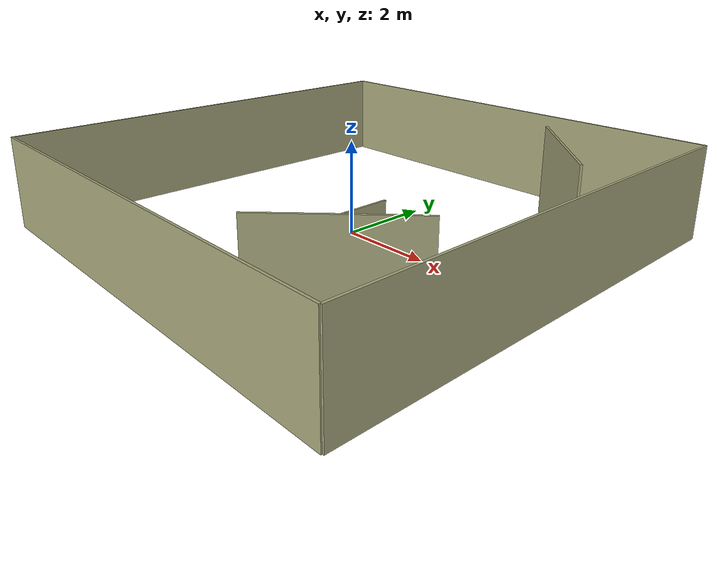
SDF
<?xml version='1.0'?>

<sdf version='1.6'>
  <model name='walls'>
    <pose frame=''>0 0 0 0 -0 0</pose>

    <link name='Wall_48'>
      <collision name='Wall_48_Collision'>
        <geometry>
          <box>
            <size>10.0001 0.05 2.0</size>
          </box>
        </geometry>
        <pose frame=''>0 0 1.0 0 -0 0</pose>
      </collision>
      <visual name='Wall_48_Visual'>
        <pose frame=''>0 0 1.0 0 -0 0</pose>
        <geometry>
          <box>
            <size>10.00001 0.05 2.0</size>
          </box>
        </geometry>
        <material>
          <script>
            <uri>file://media/materials/scripts/gazebo.material</uri>
            <name>Gazebo/Grey</name>
          </script>
          <ambient>0.666667 0.666667 0.498039 1</ambient>
        </material>
      </visual>
      <pose frame=''>-5.0 0 0 0 -0 1.57215</pose>
    </link>

    <link name='Wall_49'>
      <collision name='Wall_49_Collision'>
        <geometry>
          <box>
            <size>10.00001 0.05 2.0</size>
          </box>
        </geometry>
        <pose frame=''>0 0 1.0 0 -0 0</pose>
      </collision>
      <visual name='Wall_49_Visual'>
        <pose frame=''>0 0 1.0 0 -0 0</pose>
        <geometry>
          <box>
            <size>10.00001 0.05 2.0</size>
          </box>
        </geometry>
        <material>
          <script>
            <uri>file://media/materials/scripts/gazebo.material</uri>
            <name>Gazebo/Grey</name>
          </script>
          <ambient>0.666667 0.666667 0.498039 1</ambient>
        </material>
      </visual>
      <pose frame=''>5.0 0 0 0 -0 1.57215</pose>
    </link>

    <link name='Wall_50'>
      <collision name='Wall_50_Collision'>
        <geometry>
          <box>
            <size>10.00001 0.05 2.0</size>
          </box>
        </geometry>
        <pose frame=''>0 0 1.0 0 -0 0</pose>
      </collision>
      <visual name='Wall_50_Visual'>
        <pose frame=''>0 0 1.0 0 -0 0</pose>
        <geometry>
          <box>
            <size>10.00001 0.05 2.0</size>
          </box>
        </geometry>
        <material>
          <script>
            <uri>file://media/materials/scripts/gazebo.material</uri>
            <name>Gazebo/Grey</name>
          </script>
          <ambient>0.666667 0.666667 0.498039 1</ambient>
        </material>
      </visual>
      <pose frame=''>0 5.0 0 0 -0 0</pose>
    </link>

    <link name='Wall_51'>
      <collision name='Wall_51_Collision'>
        <geometry>
          <box>
            <size>10.00001 0.05 2.0</size>
          </box>
        </geometry>
        <pose frame=''>0 0 1.0 0 -0 0</pose>
      </collision>
      <visual name='Wall_51_Visual'>
        <pose frame=''>0 0 1.0 0 -0 0</pose>
        <geometry>
          <box>
            <size>10.00001 0.05 2.0</size>
          </box>
        </geometry>
        <material>
          <script>
            <uri>file://media/materials/scripts/gazebo.material</uri>
            <name>Gazebo/Grey</name>
          </script>
          <ambient>0.666667 0.666667 0.498039 1</ambient>
        </material>
      </visual>
      <pose frame=''>0 -5.0 0 0 -0 0</pose>
    </link>

    <link name='Wall_52'>
      <collision name='Wall_52_Collision'>
        <geometry>
          <box>
            <size>3.00001 0.05 2.0</size>
          </box>
        </geometry>
        <pose frame=''>0 0 1.0 0 -0 0</pose>
      </collision>
      <visual name='Wall_52_Visual'>
        <pose frame=''>0 0 1.0 0 -0 0</pose>
        <geometry>
          <box>
            <size>3.00001 0.05 2.0</size>
          </box>
        </geometry>
        <material>
          <script>
            <uri>file://media/materials/scripts/gazebo.material</uri>
            <name>Gazebo/Grey</name>
          </script>
          <ambient>0.666667 0.666667 0.498039 1</ambient>
        </material>
      </visual>
      <pose frame=''>3.0 -3.0 0 0 -0 0.785</pose>
    </link>

    <link name='Wall_53'>
      <collision name='Wall_53_Collision'>
        <geometry>
          <box>
            <size>3.00001 0.05 2.0</size>
          </box>
        </geometry>
        <pose frame=''>0 0 1.0 0 -0 0</pose>
      </collision>
      <visual name='Wall_53_Visual'>
        <pose frame=''>0 0 1.0 0 -0 0</pose>
        <geometry>
          <box>
            <size>3.00001 0.05 2.0</size>
          </box>
        </geometry>
        <material>
          <script>
            <uri>file://media/materials/scripts/gazebo.material</uri>
            <name>Gazebo/Grey</name>
          </script>
          <ambient>0.666667 0.666667 0.498039 1</ambient>
        </material>
      </visual>
      <pose frame=''>3.0 3.0 0 0 -0 -0.785</pose>
    </link>

    <!--U Obstacle-->
    <link name='box_54'>
      <collision name='Wall_54_Collision'>
        <geometry>
          <box>
            <size>1.00001 0.05 0.5</size>
          </box>
        </geometry>
        <pose frame=''>0 0 0.25 0 -0 0</pose>
      </collision>
      <visual name='Wall_54_Visual'>
        <pose frame=''>0 0 0.25 0 -0 0</pose>
        <geometry>
          <box>
            <size>2.00001 0.05 0.5</size>
          </box>
        </geometry>
        <material>
          <script>
            <uri>file://media/materials/scripts/gazebo.material</uri>
            <name>Gazebo/Grey</name>
          </script>
          <ambient>0.666667 0.666667 0.498039 1</ambient>
        </material>
      </visual>
      <pose frame=''>0 0 0 0 -0 1.57215</pose>
    </link>

    <!--U Obstacle-->

    <!--G Obstacle-->
    <!--G Obstacle-->

    <static>1</static>
  </model>
</sdf>
